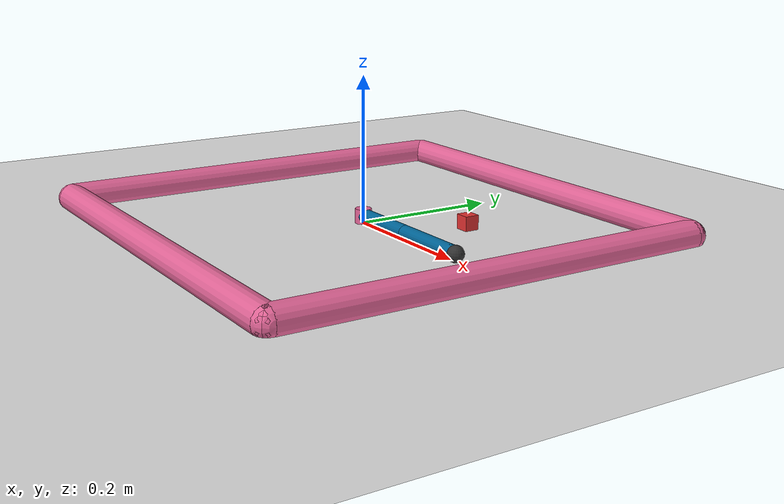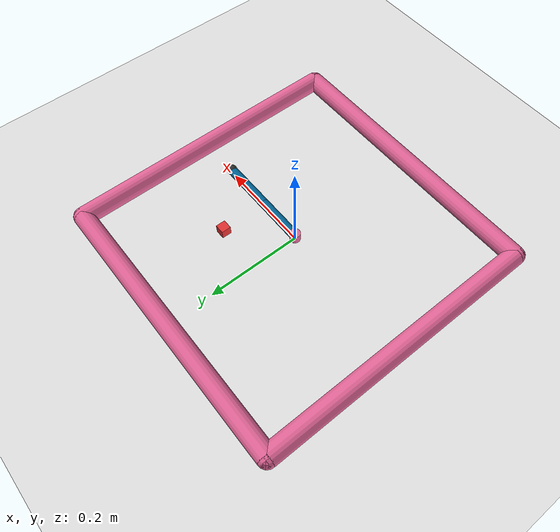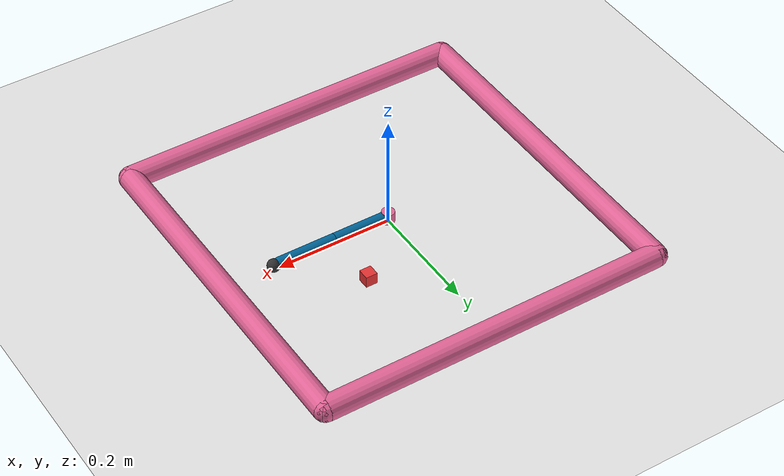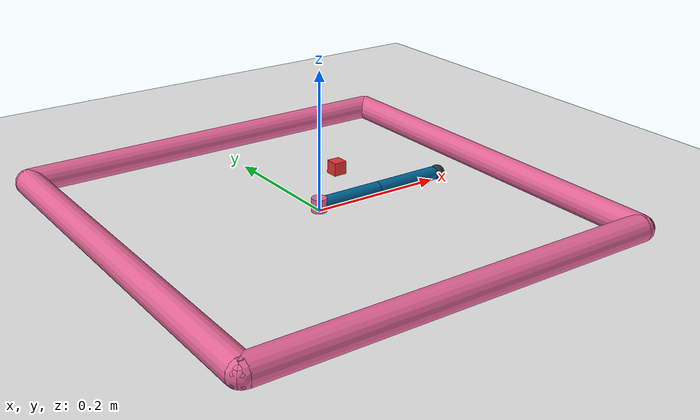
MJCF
<mujoco model="reacher">
	<compiler angle="radian" inertiafromgeom="true"/>
	<default>
		<joint armature="1" damping="1" limited="true"/>
		<geom contype="0" friction="1 0.1 0.1" rgba="0.7 0.7 0 1"/>
	</default>
	<option gravity="0 0 -9.81" integrator="RK4" timestep="0.01"/>
	<worldbody>
		<!-- Arena -->
		<geom conaffinity="0" contype="0" name="ground" pos="0 0 0" rgba="0.9 0.9 0.9 1" size="1 1 10" type="plane"/>
		<geom conaffinity="1" fromto="-.3 -.3 .01 .3 -.3 .01" name="sideS" rgba="0.9 0.4 0.6 1" size=".02" type="capsule"/>
		<geom conaffinity="1" fromto=" .3 -.3 .01 .3  .3 .01" name="sideE" rgba="0.9 0.4 0.6 1" size=".02" type="capsule"/>
		<geom conaffinity="1" fromto="-.3  .3 .01 .3  .3 .01" name="sideN" rgba="0.9 0.4 0.6 1" size=".02" type="capsule"/>
		<geom conaffinity="1" fromto="-.3 -.3 .01 -.3 .3 .01" name="sideW" rgba="0.9 0.4 0.6 1" size=".02" type="capsule"/>
		<!-- Arm -->
		<geom conaffinity="0" contype="0" fromto="0 0 0 0 0 0.02" name="root" rgba="0.9 0.4 0.6 1" size=".011" type="cylinder"/>
		<body name="body0" pos="0 0 .01">
			<geom fromto="0 0 0 0.1 0 0" name="link0" rgba="0.0 0.4 0.6 1" size=".01" type="capsule"/>
			<joint axis="0 0 1" limited="false" name="joint0" pos="0 0 0" type="hinge"/>
			<body name="body1" pos="0.1 0 0">
				<joint axis="0 0 1" limited="true" name="joint1" pos="0 0 0" range="-3.0 3.0" type="hinge"/>
				<geom fromto="0 0 0 0.1 0 0" name="link1" rgba="0.0 0.4 0.6 1" size=".01" type="capsule"/>
				<body name="fingertip" pos="0.11 0 0">
                    <geom contype="0" name="fingertip" pos="0 0 0" rgba="0.0 0.8 0.6 1" size=".01" type="sphere"/>
                    <site name="t1" pos='0 0 0' type='sphere' group='2' size='0.011' rgba='0.2 0.2 0.2 1'/>
				</body>
			</body>
		</body>

        <!-- Object -->
		<body name="box" pos="0.1 0.1 .01">
			<joint axis="1 0 0" damping="10" limited="false" name="target_x" pos="0 0 0" range="-.27 .27" stiffness="0" type="slide"/>
			<joint axis="0 1 0" damping="10" limited="false" name="target_y" pos="0 0 0" range="-.27 .27" stiffness="0" type="slide"/>
			<geom conaffinity='1' contype='1' name="target" pos="0 0 0" rgba="0.9 0.2 0.2 1" size=".01 0.01 0.01" type="box" condim='4'/>
        </body>
    </worldbody>

	<actuator>
		<motor ctrllimited="true" ctrlrange="-1.0 1.0" gear="200.0" joint="joint0"/>
		<motor ctrllimited="true" ctrlrange="-1.0 1.0" gear="200.0" joint="joint1"/>
    </actuator>

    <sensor>
        <framepos name="ee_position" objtype='body' objname='fingertip'/>
        <touch name="finger_tip_touch" site="t1"/>
    </sensor>

</mujoco>
